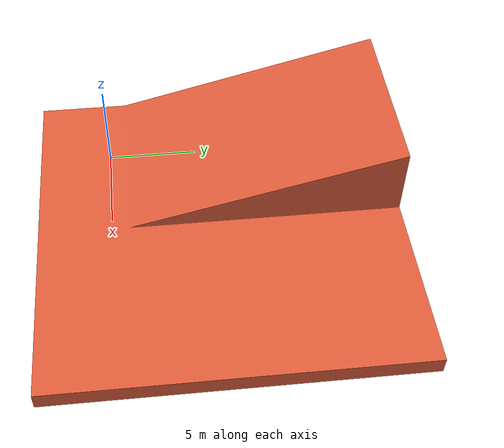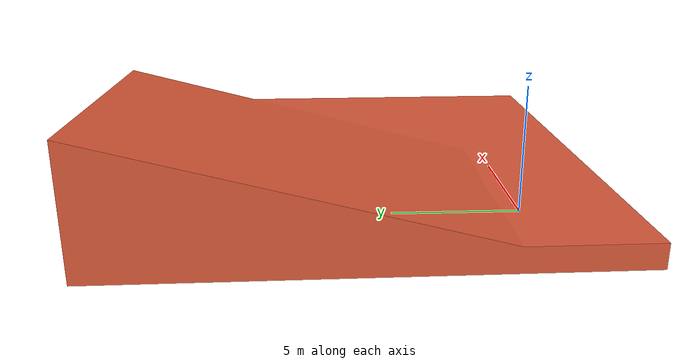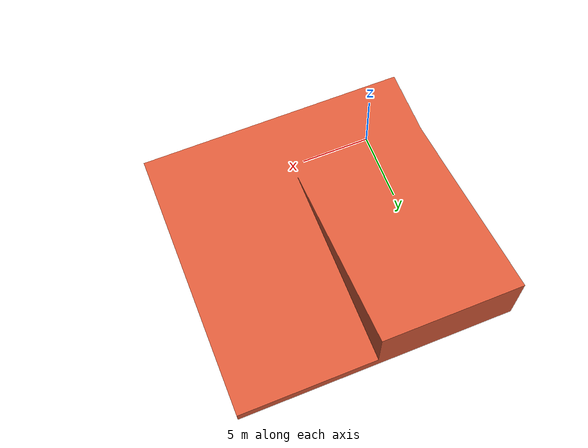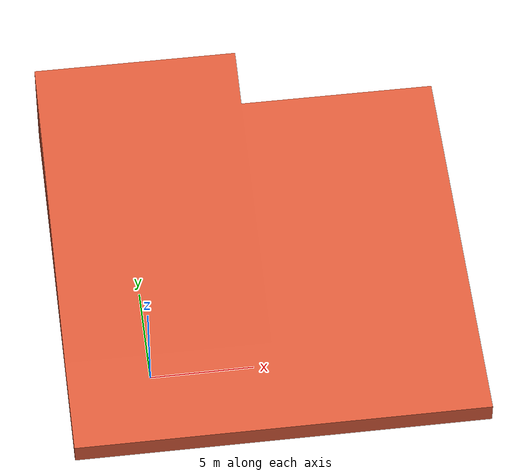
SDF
<?xml version="1.0"?>
<sdf version="1.11">
    <world name="empty">
        <physics name="1ms" type="ignored">
            <max_step_size>0.001</max_step_size>
            <real_time_factor>1.0</real_time_factor>
        </physics>
        <plugin
        filename="gz-sim-physics-system"
        name="gz::sim::systems::Physics">
        </plugin>
        <plugin
        filename="gz-sim-sensors-system"
        name="gz::sim::systems::Sensors">
        </plugin>
        <plugin
        filename="gz-sim-scene-broadcaster-system"
        name="gz::sim::systems::SceneBroadcaster">
        </plugin>
        <plugin
        filename="gz-sim-user-commands-system"
        name="gz::sim::systems::UserCommands">
        </plugin>
        <plugin filename="gz-sim-imu-system"
        name="gz::sim::systems::Imu">
        </plugin>
        <light name="sun" type="directional">
            <cast_shadows>true</cast_shadows>
            <pose>0 0 10 0 0 0</pose>
            <diffuse>0.8 0.8 0.8 1</diffuse>
            <specular>0.2 0.2 0.2 1</specular>
            <attenuation>
                <range>1000</range>
                <constant>0.9</constant>
                <linear>0.01</linear>
                <quadratic>0.001</quadratic>
            </attenuation>
            <direction>-0.5 0.1 -0.9</direction>
        </light>
        <model name="mars">
        <pose>-4.0 -4.0 -0.5 0.0 0.0 0.0 </pose>
        <static>true</static>

        <link name="mars_terrain">

        <collision name="collision">
            <geometry>
            <mesh>
                <uri>model://terrain_test.stl</uri>
                <scale>100 100 100</scale>
            </mesh>
            </geometry>
        </collision>

        <visual name="visual">
            <geometry>
                <mesh>
                    <uri>model://terrain_test.stl</uri>
                    <scale>100 100 100</scale>
                </mesh>
            </geometry>
            <material>
                <ambient>0.55 0.25 0.18 1</ambient>
                <diffuse>0.85 0.35 0.22 1</diffuse>
            </material>
        </visual>
        </link>
    </model>
    </world>
</sdf>
